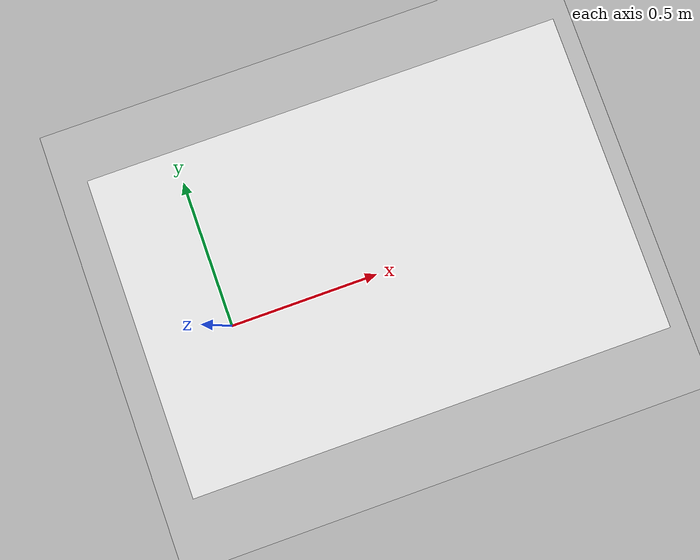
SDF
<sdf version="1.8">
 <world name="dlo_workspace">
  <model name="ground_plane">
   <static>true</static>
   <link name="link">
    <collision name="collision">
     <geometry><plane><normal>0 0 1</normal><size>100 100</size></plane></geometry>
    </collision>
    <visual name="visual">
     <geometry><plane><normal>0 0 1</normal><size>100 100</size></plane></geometry>
     <material><ambient>0.8 0.8 0.8 1</ambient><diffuse>0.8 0.8 0.8 1</diffuse></material>
    </visual>
   </link>
  </model>
  <model name="table">
   <static>true</static>
   <pose>0.5 0 0.375 0 0 0</pose>
   <link name="table_link">
    <collision name="collision"><geometry><box><size>1.2 0.8 0.75</size></box></geometry></collision>
    <visual name="visual">
     <geometry><box><size>1.2 0.8 0.75</size></box></geometry>
     <material>
      <ambient>1.0 1.0 1.0 1</ambient>
      <diffuse>1.0 1.0 1.0 1</diffuse>
      <specular>0.3 0.3 0.3 1</specular>
     </material>
    </visual>
   </link>
  </model>
 </world>
</sdf>
